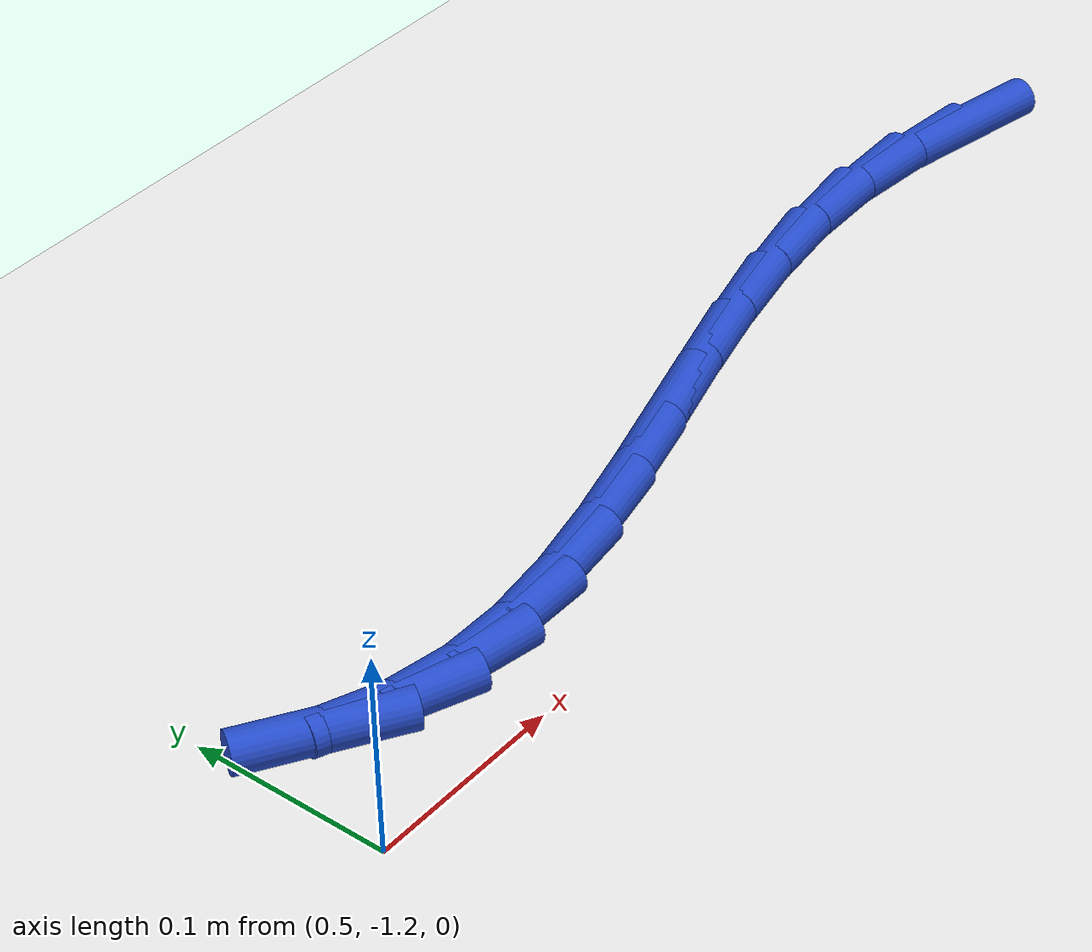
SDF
<sdf version="1.6">
 <world name="default">
  <model name="ground_plane">
   <static>1</static>
   <link name="link">
    <collision name="collision">
     <geometry><plane><normal>0 0 1</normal><size>100 100</size></plane></geometry>
     <surface><friction><ode><mu>100</mu><mu2>50</mu2></ode></friction></surface>
    </collision>
    <visual name="visual">
     <cast_shadows>0</cast_shadows>
     <geometry><plane><normal>0 0 1</normal><size>100 100</size></plane></geometry>
     <material>
      <script><uri>file://media/materials/scripts/gazebo.material</uri><name>Gazebo/WhiteGlow</name></script>
     </material>
    </visual>
   </link>
  </model>
  <model name="line">
   <link name="link_135">
    <pose>1.0780025683039018 -1.097337787060813 0.01 0 1.57 -0.19843859265833583</pose>
    <collision name="collision">
     <geometry><cylinder><radius>0.01</radius><length>0.08</length></cylinder></geometry>
    </collision>
    <visual name="visual">
     <material>
      <script><name>Gazebo/Blue</name><uri>file://media/materials/scripts/gazebo.material</uri></script>
     </material>
     <geometry><cylinder><radius>0.01</radius><length>0.08</length></cylinder></geometry>
    </visual>
   </link>
   <link name="link_136">
    <pose>1.0368642042338054 -1.0890654799096442 0.01 0 1.57 -0.09106449736590008</pose>
    <collision name="collision">
     <geometry><cylinder><radius>0.01</radius><length>0.08</length></cylinder></geometry>
    </collision>
    <visual name="visual">
     <material>
      <script><name>Gazebo/Blue</name><uri>file://media/materials/scripts/gazebo.material</uri></script>
     </material>
     <geometry><cylinder><radius>0.01</radius><length>0.08</length></cylinder></geometry>
    </visual>
   </link>
   <link name="link_137">
    <pose>0.9951555672064264 -1.085256769800181 0.01 0 1.57 0.031898642623894836</pose>
    <collision name="collision">
     <geometry><cylinder><radius>0.01</radius><length>0.08</length></cylinder></geometry>
    </collision>
    <visual name="visual">
     <material>
      <script><name>Gazebo/Blue</name><uri>file://media/materials/scripts/gazebo.material</uri></script>
     </material>
     <geometry><cylinder><radius>0.01</radius><length>0.08</length></cylinder></geometry>
    </visual>
   </link>
   <link name="link_138">
    <pose>0.9529044217797837 -1.0866049812985346 0.01 0 1.57 0.13383767226426224</pose>
    <collision name="collision">
     <geometry><cylinder><radius>0.01</radius><length>0.08</length></cylinder></geometry>
    </collision>
    <visual name="visual">
     <material>
      <script><name>Gazebo/Blue</name><uri>file://media/materials/scripts/gazebo.material</uri></script>
     </material>
     <geometry><cylinder><radius>0.01</radius><length>0.08</length></cylinder></geometry>
    </visual>
   </link>
   <link name="link_139">
    <pose>0.9103460905213547 -1.0923351441066873 0.01 0 1.57 0.20773701296250421</pose>
    <collision name="collision">
     <geometry><cylinder><radius>0.01</radius><length>0.08</length></cylinder></geometry>
    </collision>
    <visual name="visual">
     <material>
      <script><name>Gazebo/Blue</name><uri>file://media/materials/scripts/gazebo.material</uri></script>
     </material>
     <geometry><cylinder><radius>0.01</radius><length>0.08</length></cylinder></geometry>
    </visual>
   </link>
   <link name="link_140">
    <pose>0.8677671311856461 -1.101309842930285 0.01 0 1.57 0.25614774633892945</pose>
    <collision name="collision">
     <geometry><cylinder><radius>0.01</radius><length>0.08</length></cylinder></geometry>
    </collision>
    <visual name="visual">
     <material>
      <script><name>Gazebo/Blue</name><uri>file://media/materials/scripts/gazebo.material</uri></script>
     </material>
     <geometry><cylinder><radius>0.01</radius><length>0.08</length></cylinder></geometry>
    </visual>
   </link>
   <link name="link_141">
    <pose>0.8254541015271648 -1.1123916624749752 0.01 0 1.57 0.2809530001740785</pose>
    <collision name="collision">
     <geometry><cylinder><radius>0.01</radius><length>0.08</length></cylinder></geometry>
    </collision>
    <visual name="visual">
     <material>
      <script><name>Gazebo/Blue</name><uri>file://media/materials/scripts/gazebo.material</uri></script>
     </material>
     <geometry><cylinder><radius>0.01</radius><length>0.08</length></cylinder></geometry>
    </visual>
   </link>
   <link name="link_142">
    <pose>0.7836935593004178 -1.1244431874464047 0.01 0 1.57 0.28263113805526385</pose>
    <collision name="collision">
     <geometry><cylinder><radius>0.01</radius><length>0.08</length></cylinder></geometry>
    </collision>
    <visual name="visual">
     <material>
      <script><name>Gazebo/Blue</name><uri>file://media/materials/scripts/gazebo.material</uri></script>
     </material>
     <geometry><cylinder><radius>0.01</radius><length>0.08</length></cylinder></geometry>
    </visual>
   </link>
   <link name="link_143">
    <pose>0.7427720622599132 -1.1363270025502192 0.01 0 1.57 0.25981518068607434</pose>
    <collision name="collision">
     <geometry><cylinder><radius>0.01</radius><length>0.08</length></cylinder></geometry>
    </collision>
    <visual name="visual">
     <material>
      <script><name>Gazebo/Blue</name><uri>file://media/materials/scripts/gazebo.material</uri></script>
     </material>
     <geometry><cylinder><radius>0.01</radius><length>0.08</length></cylinder></geometry>
    </visual>
   </link>
   <link name="link_144">
    <pose>0.7029761681601574 -1.1469056924920662 0.01 0 1.57 0.20887697843937122</pose>
    <collision name="collision">
     <geometry><cylinder><radius>0.01</radius><length>0.08</length></cylinder></geometry>
    </collision>
    <visual name="visual">
     <material>
      <script><name>Gazebo/Blue</name><uri>file://media/materials/scripts/gazebo.material</uri></script>
     </material>
     <geometry><cylinder><radius>0.01</radius><length>0.08</length></cylinder></geometry>
    </visual>
   </link>
   <link name="link_145">
    <pose>0.6645924347556575 -1.1550418419775925 0.01 0 1.57 0.12356493972335773</pose>
    <collision name="collision">
     <geometry><cylinder><radius>0.01</radius><length>0.08</length></cylinder></geometry>
    </collision>
    <visual name="visual">
     <material>
      <script><name>Gazebo/Blue</name><uri>file://media/materials/scripts/gazebo.material</uri></script>
     </material>
     <geometry><cylinder><radius>0.01</radius><length>0.08</length></cylinder></geometry>
    </visual>
   </link>
   <link name="link_146">
    <pose>0.627907419800921 -1.1595980357124445 0.01 0 1.57 -0.004644880821836123</pose>
    <collision name="collision">
     <geometry><cylinder><radius>0.01</radius><length>0.08</length></cylinder></geometry>
    </collision>
    <visual name="visual">
     <material>
      <script><name>Gazebo/Blue</name><uri>file://media/materials/scripts/gazebo.material</uri></script>
     </material>
     <geometry><cylinder><radius>0.01</radius><length>0.08</length></cylinder></geometry>
    </visual>
   </link>
   <link name="link_147">
    <pose>0.5932076810504544 -1.159436858402269 0.01 0 1.57 -0.18252238409526975</pose>
    <collision name="collision">
     <geometry><cylinder><radius>0.01</radius><length>0.08</length></cylinder></geometry>
    </collision>
    <visual name="visual">
     <material>
      <script><name>Gazebo/Blue</name><uri>file://media/materials/scripts/gazebo.material</uri></script>
     </material>
     <geometry><cylinder><radius>0.01</radius><length>0.08</length></cylinder></geometry>
    </visual>
   </link>
   <link name="link_148">
    <pose>0.5607711666589613 -1.1534498356016099 0.01 0 1.57 -0.3831076042595102</pose>
    <collision name="collision">
     <geometry><cylinder><radius>0.01</radius><length>0.08</length></cylinder></geometry>
    </collision>
    <visual name="visual">
     <material>
      <script><name>Gazebo/Blue</name><uri>file://media/materials/scripts/gazebo.material</uri></script>
     </material>
     <geometry><cylinder><radius>0.01</radius><length>0.08</length></cylinder></geometry>
    </visual>
   </link>
   <link name="link_149">
    <pose>0.53064394570342 -1.141307945743719 0.01 0 1.57 -0.5652974676347401</pose>
    <collision name="collision">
     <geometry><cylinder><radius>0.01</radius><length>0.08</length></cylinder></geometry>
    </collision>
    <visual name="visual">
     <material>
      <script><name>Gazebo/Blue</name><uri>file://media/materials/scripts/gazebo.material</uri></script>
     </material>
     <geometry><cylinder><radius>0.01</radius><length>0.08</length></cylinder></geometry>
    </visual>
   </link>
  </model>
 </world>
</sdf>
